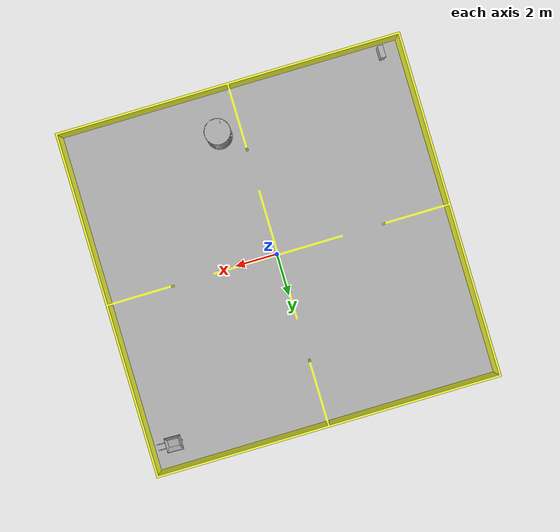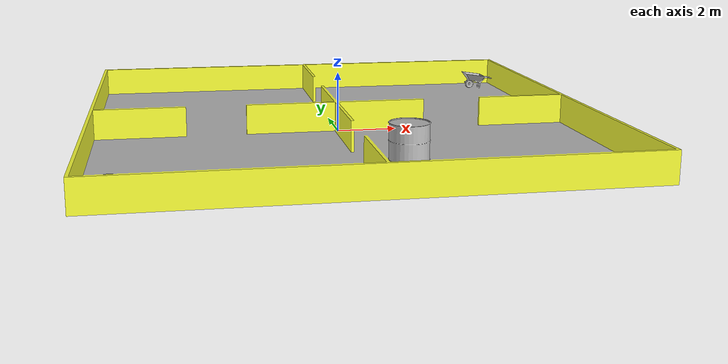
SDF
<sdf version="1.4">
 <world name="arena">
  <include><uri>model://sun</uri><pose>0.3 0.2 5.0 0 0 0</pose><cast_shadows>false</cast_shadows></include>
  <model name="arena_simple">
   <static>true</static>
   <link name="arena_simple_link">
    <collision name="arena_simple_collision">
     <pose>8 0 0 0 0 0</pose>
     <geometry>
      <mesh>
       <uri>model://gazebo_worlds_cdt/models/arena_simple/meshes/arena_simple.dae</uri>
       <scale>1. 1. 1.</scale>
      </mesh>
     </geometry>
    </collision>
    <visual name="arena_simple_visual">
     <pose>8 0 0 0 0 0</pose>
     <geometry>
      <mesh>
       <uri>model://gazebo_worlds_cdt/models/arena_simple/meshes/arena_simple.dae</uri>
       <scale>1. 1. 1.</scale>
      </mesh>
     </geometry>
    </visual>
   </link>
  </model>
  <model name="barrel">
   <pose>1 -6 0 0 0 0</pose>
   <static>true</static>
   <link name="barrel_link">
    <collision name="barrel_collision">
     <geometry>
      <mesh><uri>model://gazebo_worlds_cdt/models/barrel/meshes/barrel.dae</uri><scale>1. 1. 1.</scale></mesh>
     </geometry>
    </collision>
    <visual name="barrel_visual">
     <geometry>
      <mesh><uri>model://gazebo_worlds_cdt/models/barrel/meshes/barrel.dae</uri><scale>1. 1. 1.</scale></mesh>
     </geometry>
    </visual>
   </link>
  </model>
  <model name="barrow">
   <pose>7 7 0 0 0 0</pose>
   <static>true</static>
   <link name="barrow_link">
    <collision name="barrow_collision">
     <geometry>
      <mesh><uri>model://gazebo_worlds_cdt/models/barrow/meshes/barrow.dae</uri><scale>1. 1. 1.</scale></mesh>
     </geometry>
    </collision>
    <visual name="barrow_visual">
     <geometry>
      <mesh><uri>model://gazebo_worlds_cdt/models/barrow/meshes/barrow.dae</uri><scale>1. 1. 1.</scale></mesh>
     </geometry>
    </visual>
   </link>
  </model>
  <model name="computer">
   <pose>-7.2 -7.5 0.3 0 0 0</pose>
   <static>true</static>
   <link name="computer_link">
    <collision name="computer_collision">
     <geometry>
      <mesh><uri>model://gazebo_worlds_cdt/models/computer/meshes/computer.dae</uri><scale>1. 1. 1.</scale></mesh>
     </geometry>
    </collision>
    <visual name="computer_visual">
     <geometry>
      <mesh><uri>model://gazebo_worlds_cdt/models/computer/meshes/computer.dae</uri><scale>1. 1. 1.</scale></mesh>
     </geometry>
    </visual>
   </link>
  </model>
  <physics type="ode"><gravity>0 0 -9.81</gravity></physics>
 </world>
</sdf>
